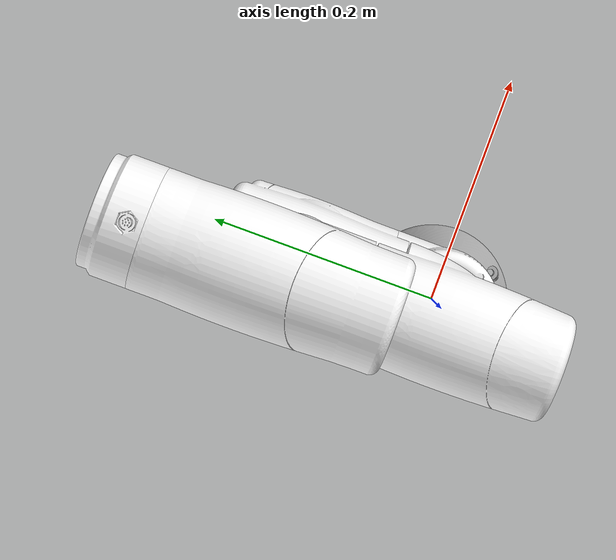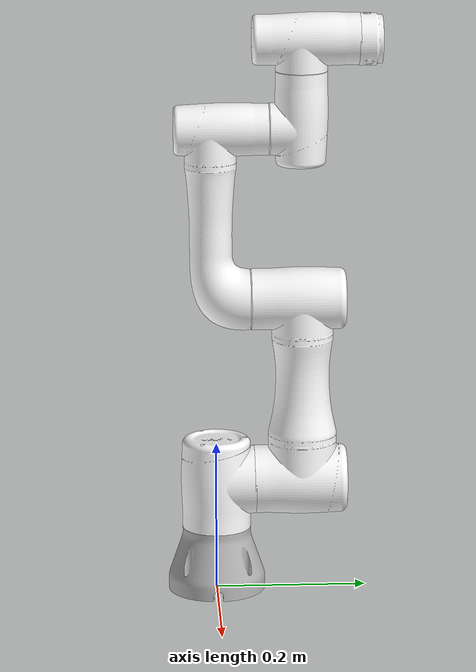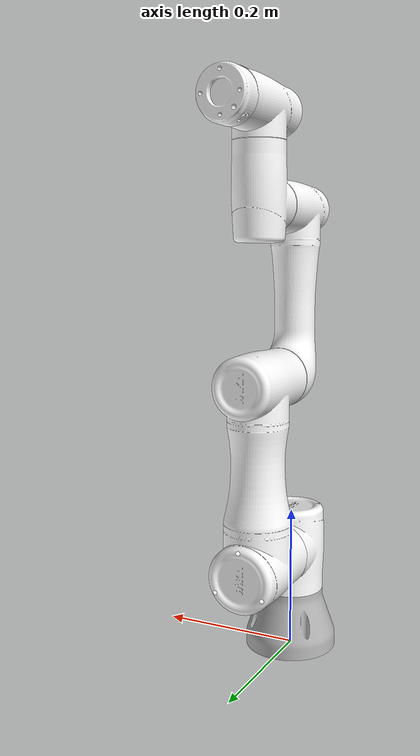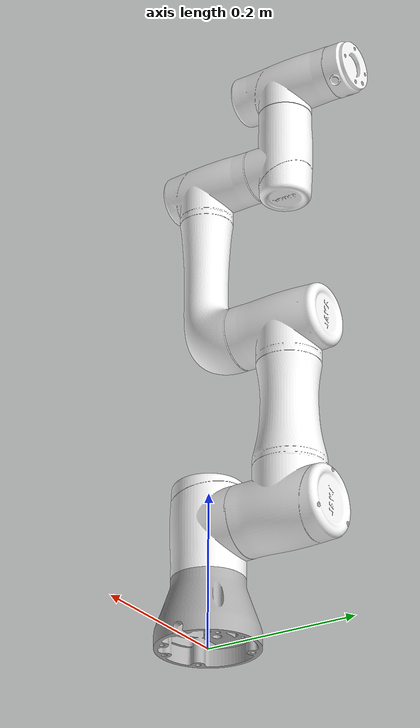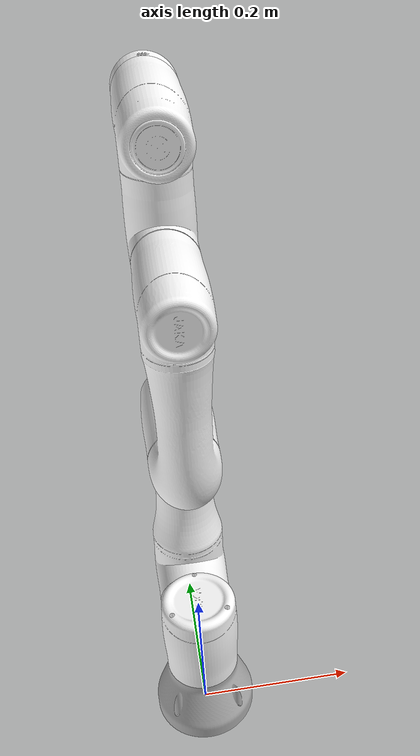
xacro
<?xml version="1.0"?>
<robot xmlns:xacro="http://www.ros.org/wiki/xacro" name="jaka_zu3">
    <xacro:arg name="initial_positions_file" default="initial_positions.yaml" />

    <!-- Import jaka urdf file -->
    <xacro:include filename="$(find jaka_description)/urdf/jaka_zu3.urdf" />

    <!-- Import jaka ros2_control description -->
    <xacro:include filename="jaka_zu3.ros2_control.xacro" />

    <xacro:jaka_zu3_ros2_control name="JAKAFakeSystem" initial_positions_file="$(arg initial_positions_file)"/>
</robot>

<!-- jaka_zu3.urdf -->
<robot name="jaka_zu3">
  <!-- links: main serial chain -->
  <link name="base_link">
    <visual>
      <origin rpy="0 0 0" xyz="0 0 0"/>
      <geometry>
        <mesh filename="package://jaka_description/meshes/visual/base_link.stl" scale="0.001 0.001 0.001"/>
      </geometry>
      <material name="LightGrey">
        <color rgba="0.7 0.7 0.7 1.0"/>
      </material>
    </visual>
    <collision>
      <origin rpy="0 0 0" xyz="0 0 0"/>
      <geometry>
        <mesh filename="package://jaka_description/meshes/collision/base_link.stl" scale="0.001 0.001 0.001"/>
      </geometry>
    </collision>
  </link>
  <link name="link_1">
    <visual>
      <origin rpy="0 0 0" xyz="0 0 -0.0865"/>
      <geometry>
        <mesh filename="package://jaka_description/meshes/visual/link_1.stl" scale="0.001 0.001 0.001"/>
      </geometry>
      <material name="LightGrey">
        <color rgba="0.999 0.999 0.999 1.0"/>
      </material>
    </visual>
    <collision>
      <origin rpy="0 0 0" xyz="0 0 -0.0865"/>
      <geometry>
        <mesh filename="package://jaka_description/meshes/collision/link_1.stl" scale="0.001 0.001 0.001"/>
      </geometry>
    </collision>
  </link>
  <link name="link_2">
    <visual>
      <origin rpy="0.0 0.0 0.0" xyz="-0.0505 0.0 -0.15055"/>
      <geometry>
        <mesh filename="package://jaka_description/meshes/visual/link_2.stl" scale="0.001 0.001 0.001"/>
      </geometry>
      <material name="LightGrey">
        <color rgba="0.999 0.999 0.999 1.0"/>
      </material>
    </visual>
    <collision>
      <origin rpy="0.0 0.0 0.0" xyz="-0.0505 0.0 -0.15055"/>
      <geometry>
        <mesh filename="package://jaka_description/meshes/collision/link_2.stl" scale="0.001 0.001 0.001"/>
      </geometry>
    </collision>
  </link>
  <link name="link_3">
    <visual>
      <origin rpy="0 0 0" xyz="0.003 0 -0.39855"/>
      <geometry>
        <mesh filename="package://jaka_description/meshes/visual/link_3.stl" scale="0.001 0.001 0.001"/>
      </geometry>
      <material name="LightGrey">
        <color rgba="0.999 0.999 0.999 1.0"/>
      </material>
    </visual>
    <collision>
      <origin rpy="0 0 0" xyz="0.003 0 -0.39855"/>
      <geometry>
        <mesh filename="package://jaka_description/meshes/collision/link_3.stl" scale="0.001 0.001 0.001"/>
      </geometry>
    </collision>
  </link>
  <link name="link_4">
    <visual>
      <origin rpy="0 0 0" xyz="-0.113 0 -0.62655"/>
      <geometry>
        <mesh filename="package://jaka_description/meshes/visual/link_4.stl" scale="0.001 0.001 0.001"/>
      </geometry>
      <material name="LightGrey">
        <color rgba="0.999 0.999 0.999 1.0"/>
      </material>
    </visual>
    <collision>
      <origin rpy="0 0 0" xyz="-0.113 0 -0.62655"/>
      <geometry>
        <mesh filename="package://jaka_description/meshes/collision/link_4.stl" scale="0.001 0.001 0.001"/>
      </geometry>
    </collision>
  </link>
  <link name="link_5">
    <visual>
      <origin rpy="0 0 0" xyz="-0.113 0 -0.74330"/>
      <geometry>
        <mesh filename="package://jaka_description/meshes/visual/link_5.stl" scale="0.001 0.001 0.001"/>
      </geometry>
      <material name="LightGrey">
        <color rgba="0.999 0.999 0.999 1.0"/>
      </material>
    </visual>
    <collision>
      <origin rpy="0 0 0" xyz="-0.113 0 -0.74330"/>
      <geometry>
        <mesh filename="package://jaka_description/meshes/collision/link_5.stl" scale="0.001 0.001 0.001"/>
      </geometry>
    </collision>
  </link>
  <link name="link_6">
    <visual>
      <origin rpy="0 0 0" xyz="-0.008 0 -0.74405"/>
      <geometry>
        <mesh filename="package://jaka_description/meshes/visual/link_6.stl" scale="0.001 0.001 0.001"/>
      </geometry>
      <material name="LightGrey">
        <color rgba="0.999 0.999 0.999 1.0"/>
      </material>
    </visual>
    <collision>
      <origin rpy="0 0 0" xyz="-0.008 0 -0.74405"/>
      <geometry>
        <mesh filename="package://jaka_description/meshes/collision/link_6.stl" scale="0.001 0.001 0.001"/>
      </geometry>
    </collision>
  </link>
  <!-- joints: main serial chain -->
  <joint name="joint_1" type="revolute">
    <origin rpy="0.0 0.0 1.5708" xyz="0.0 0.0 0.0865"/>
    <parent link="base_link"/>
    <child link="link_1"/>
    <axis xyz="0 0 -1"/>
    <limit effort="0" lower="-4.71239" upper="4.71239" velocity="3.14159"/>
  </joint>
  <joint name="joint_2" type="revolute">
    <origin rpy="0.0 0.0 0.0" xyz="0.0505 0.0 0.0645"/>
    <parent link="link_1"/>
    <child link="link_2"/>
    <axis xyz="-1 0 0"/>
    <limit effort="0" lower="-1.48353" upper="4.62512" velocity="3.14159"/>
  </joint>
  <joint name="joint_3" type="revolute">
    <origin rpy="0.0 0.0 0.0" xyz="-0.055 0 0.248"/>
    <parent link="link_2"/>
    <child link="link_3"/>
    <axis xyz="1 0 0"/>
    <limit effort="0" lower="-3.05433" upper="3.05433" velocity="3.14159"/>
  </joint>
  <joint name="joint_4" type="revolute">
    <origin rpy="0 0.0 0.0" xyz="0.1175 0.0 0.228"/>
    <parent link="link_3"/>
    <child link="link_4"/>
    <axis xyz="-1 0 0"/>
    <limit effort="0" lower="-1.48353" upper="4.62512" velocity="3.14159"/>
  </joint>
  <joint name="joint_5" type="revolute">
    <origin rpy="0.0 0.0 3.1415926" xyz="0.0 0.0 0.1175"/>
    <parent link="link_4"/>
    <child link="link_5"/>
    <axis xyz="0 0 -1"/>
    <limit effort="0" lower="-4.71239" upper="4.71239" velocity="3.14159"/>
  </joint>
  <joint name="joint_6" type="revolute">
    <origin rpy="-1.5708 0.0 0.0" xyz="-0.105 0.0 0.0"/>
    <parent link="link_5"/>
    <child link="link_6"/>
    <axis xyz="1 0 0"/>
    <limit effort="0" lower="-4.71239" upper="4.71239" velocity="3.14159"/>
  </joint>
  <!-- ROS-Industrial 'base' frame: base_link to HIWIN World Coordinates transform -->
  <link name="base"/>
  <joint name="base_link-base" type="fixed">
    <origin rpy="0 0 0" xyz="0 0 0"/>
    <parent link="base_link"/>
    <child link="base"/>
  </joint>
  <!-- ROS-Industrial 'flange' frame: attachment point for EEF models -->
  <link name="flange"/>
  <joint name="joint_6-flange" type="fixed">
    <origin rpy="0 0 0" xyz="0 0 0"/>
    <parent link="link_6"/>
    <child link="flange"/>
  </joint>
  <!-- ROS-Industrial 'tool0' frame: all-zeros tool frame -->
  <link name="tool0"/>
  <joint name="link_6-tool0" type="fixed">
    <origin rpy="0.0 -1.5707963267948966 0.0" xyz="0 0 0"/>
    <parent link="link_6"/>
    <child link="tool0"/>
  </joint>
</robot>
